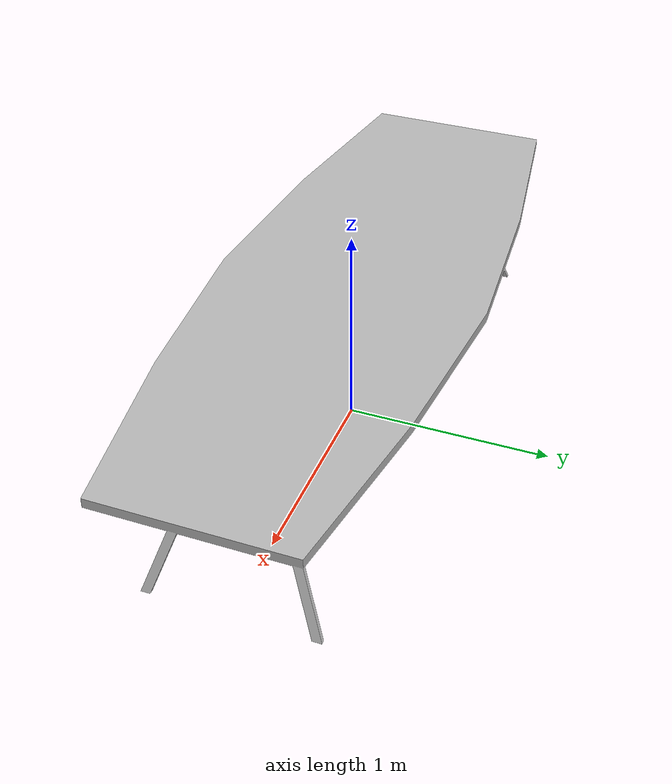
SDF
<?xml version='1.0' encoding='utf-8'?>
<sdf version="1.6">
  <model name="ConfTable">
   <static>true</static>
    <link name="body">
      <pose>0 0 0 0 0 0</pose>

      <visual name="visual">
        <geometry>
          <mesh>
            <uri>model://ConfTable/meshes/ConfTable.obj</uri>
          </mesh>
        </geometry>
      </visual>

      <collision name="collision">
        <geometry>
          <mesh>
            <uri>model://ConfTable/meshes/ConfTable_Col.obj</uri>
          </mesh>
        </geometry>
      </collision>

    </link>
  </model>
</sdf>
